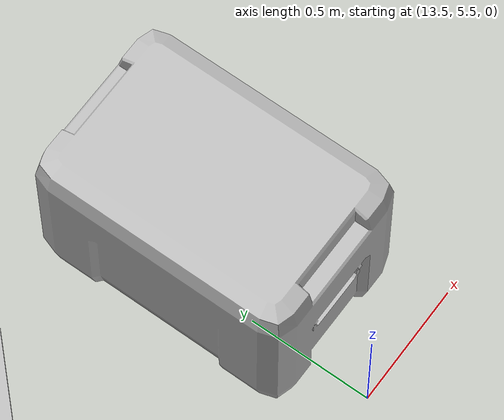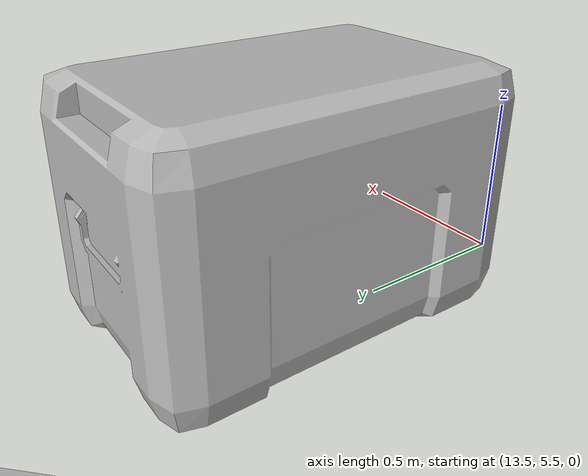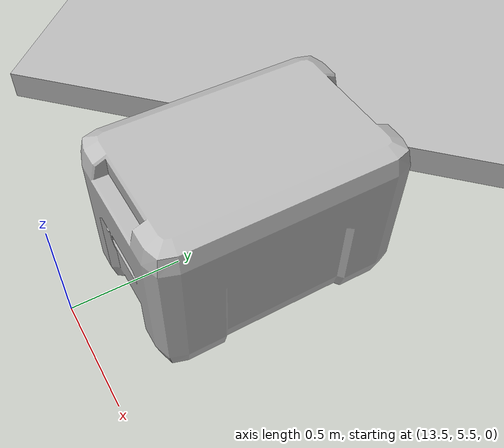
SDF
<sdf version="1.6">
 <world name="SRC_finals">
  <include>
   <name>walkway_11</name>
   <pose>11.98241759988024
      7.897331696025761
      -0.052151
      0
      0
      -2.3561944901923453</pose>
   <uri>model://walkway_finish_opposite</uri>
  </include>
  <include>
   <name>bling_14</name>
   <pose>13.625733759357777
      6.254015536548224
      0
      0
      0
      -1.570796326794897</pose>
   <uri>model://mars_crate_long</uri>
  </include>
 </world>
</sdf>
